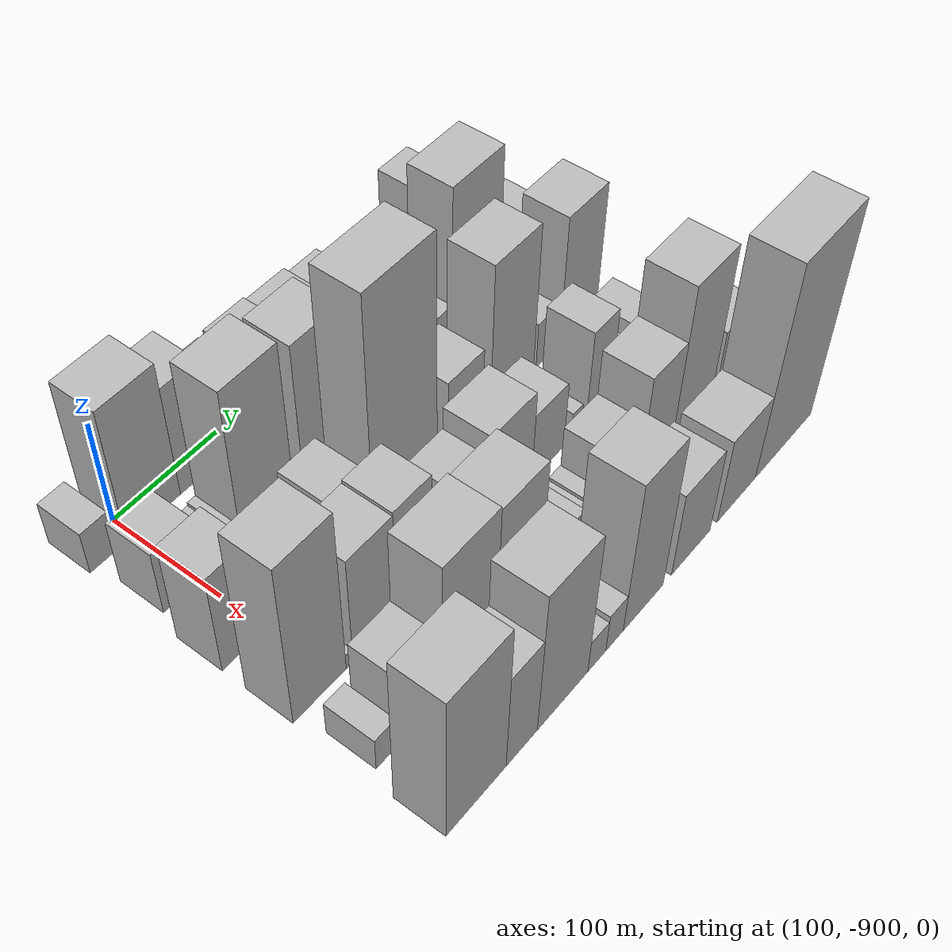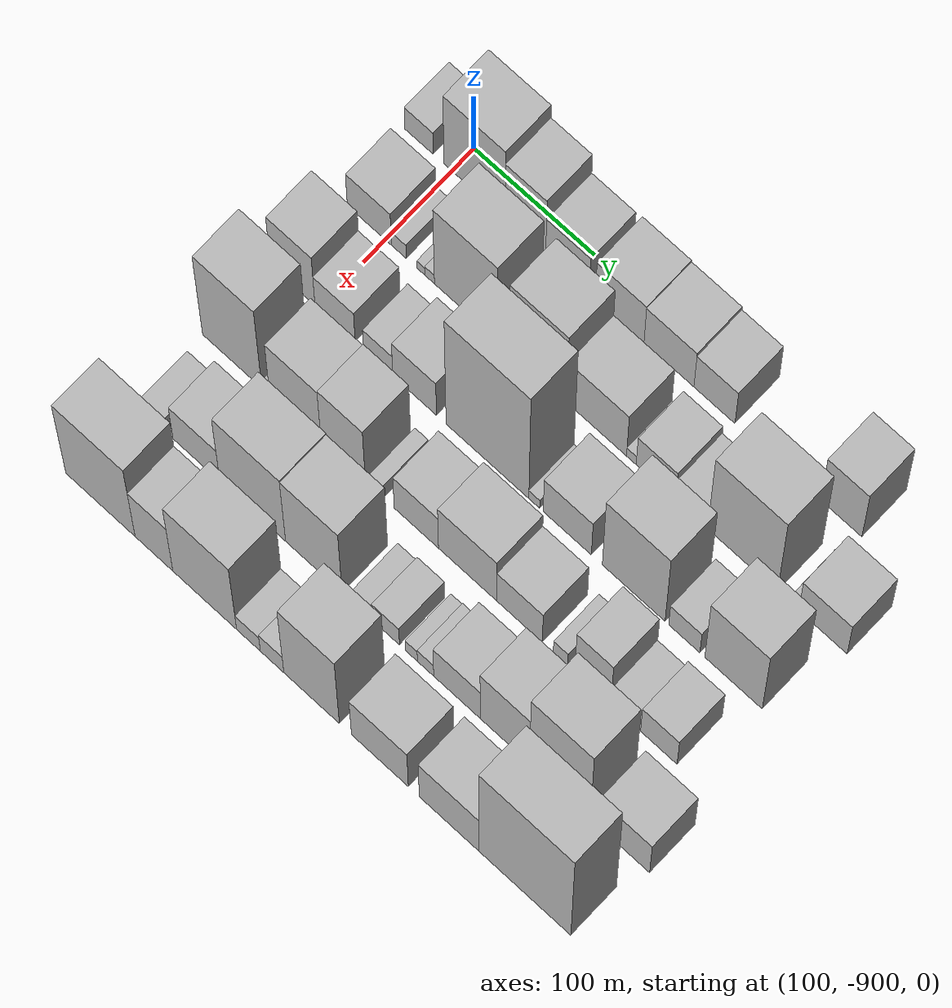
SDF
<sdf version="1.6">
 <world name="default">
  <model name="building_1">
   <static>1</static>
   <pose>100.0000 -928.0170 0 0.000000 0.000000 0.000000</pose>
   <link name="link">
    <pose>0 0 21.00 0 0 0</pose>
    <collision name="collision"><geometry><box><size>40.0000 23.9660 42.0000</size></box></geometry></collision>
    <visual name="visual">
     <cast_shadows>0</cast_shadows>
     <geometry><box><size>40.0000 23.9660 42.0000</size></box></geometry>
     <material>
      <script>
       <uri>model://HANNAS_wall/materials/scripts</uri>
       <uri>model://HANNAS_wall/materials/textures</uri>
       <name>vrc/HANNAS_wall</name>
      </script>
     </material>
    </visual>
   </link>
  </model>
  <model name="building_2">
   <static>1</static>
   <pose>100.0000 -881.4012 0 0.000000 0.000000 0.000000</pose>
   <link name="link">
    <pose>0 0 66.00 0 0 0</pose>
    <collision name="collision"><geometry><box><size>40.0000 51.2656 132.0000</size></box></geometry></collision>
    <visual name="visual">
     <cast_shadows>0</cast_shadows>
     <geometry><box><size>40.0000 51.2656 132.0000</size></box></geometry>
     <material>
      <script>
       <uri>model://HANNAS_wall/materials/scripts</uri>
       <uri>model://HANNAS_wall/materials/textures</uri>
       <name>vrc/HANNAS_wall</name>
      </script>
     </material>
    </visual>
   </link>
  </model>
  <model name="building_3">
   <static>1</static>
   <pose>100.0000 -838.8127 0 0.000000 0.000000 0.000000</pose>
   <link name="link">
    <pose>0 0 54.00 0 0 0</pose>
    <collision name="collision"><geometry><box><size>40.0000 33.9112 108.0000</size></box></geometry></collision>
    <visual name="visual">
     <cast_shadows>0</cast_shadows>
     <geometry><box><size>40.0000 33.9112 108.0000</size></box></geometry>
     <material>
      <script>
       <uri>model://HANNAS_wall/materials/scripts</uri>
       <uri>model://HANNAS_wall/materials/textures</uri>
       <name>vrc/HANNAS_wall</name>
      </script>
     </material>
    </visual>
   </link>
  </model>
  <model name="building_4">
   <static>1</static>
   <pose>100.0000 -803.6682 0 0.000000 0.000000 0.000000</pose>
   <link name="link">
    <pose>0 0 36.00 0 0 0</pose>
    <collision name="collision"><geometry><box><size>40.0000 36.3779 72.0000</size></box></geometry></collision>
    <visual name="visual">
     <cast_shadows>0</cast_shadows>
     <geometry><box><size>40.0000 36.3779 72.0000</size></box></geometry>
     <material>
      <script>
       <uri>model://HANNAS_wall/materials/scripts</uri>
       <uri>model://HANNAS_wall/materials/textures</uri>
       <name>vrc/HANNAS_wall</name>
      </script>
     </material>
    </visual>
   </link>
  </model>
  <model name="building_5">
   <static>1</static>
   <pose>100.0000 -760.2325 0 0.000000 0.000000 0.000000</pose>
   <link name="link">
    <pose>0 0 37.50 0 0 0</pose>
    <collision name="collision"><geometry><box><size>40.0000 40.4935 75.0000</size></box></geometry></collision>
    <visual name="visual">
     <cast_shadows>0</cast_shadows>
     <geometry><box><size>40.0000 40.4935 75.0000</size></box></geometry>
     <material>
      <script>
       <uri>model://HANNAS_wall/materials/scripts</uri>
       <uri>model://HANNAS_wall/materials/textures</uri>
       <name>vrc/HANNAS_wall</name>
      </script>
     </material>
    </visual>
   </link>
  </model>
  <model name="building_6">
   <static>1</static>
   <pose>100.0000 -719.3394 0 0.000000 0.000000 0.000000</pose>
   <link name="link">
    <pose>0 0 36.00 0 0 0</pose>
    <collision name="collision"><geometry><box><size>40.0000 41.2927 72.0000</size></box></geometry></collision>
    <visual name="visual">
     <cast_shadows>0</cast_shadows>
     <geometry><box><size>40.0000 41.2927 72.0000</size></box></geometry>
     <material>
      <script>
       <uri>model://HANNAS_wall/materials/scripts</uri>
       <uri>model://HANNAS_wall/materials/textures</uri>
       <name>vrc/HANNAS_wall</name>
      </script>
     </material>
    </visual>
   </link>
  </model>
  <model name="building_7">
   <static>1</static>
   <pose>100.0000 -681.7524 0 0.000000 0.000000 0.000000</pose>
   <link name="link">
    <pose>0 0 33.00 0 0 0</pose>
    <collision name="collision"><geometry><box><size>40.0000 33.8814 66.0000</size></box></geometry></collision>
    <visual name="visual">
     <cast_shadows>0</cast_shadows>
     <geometry><box><size>40.0000 33.8814 66.0000</size></box></geometry>
     <material>
      <script>
       <uri>model://HANNAS_wall/materials/scripts</uri>
       <uri>model://HANNAS_wall/materials/textures</uri>
       <name>vrc/HANNAS_wall</name>
      </script>
     </material>
    </visual>
   </link>
  </model>
  <model name="building_8">
   <static>1</static>
   <pose>100.0000 -577.4035 0 0.000000 0.000000 0.000000</pose>
   <link name="link">
    <pose>0 0 46.50 0 0 0</pose>
    <collision name="collision"><geometry><box><size>40.0000 33.6054 93.0000</size></box></geometry></collision>
    <visual name="visual">
     <cast_shadows>0</cast_shadows>
     <geometry><box><size>40.0000 33.6054 93.0000</size></box></geometry>
     <material>
      <script>
       <uri>model://HANNAS_wall/materials/scripts</uri>
       <uri>model://HANNAS_wall/materials/textures</uri>
       <name>vrc/HANNAS_wall</name>
      </script>
     </material>
    </visual>
   </link>
  </model>
  <model name="building_52">
   <static>1</static>
   <pose>160.0000 -913.4482 0 0.000000 0.000000 0.000000</pose>
   <link name="link">
    <pose>0 0 31.50 0 0 0</pose>
    <collision name="collision"><geometry><box><size>40.0000 37.1036 63.0000</size></box></geometry></collision>
    <visual name="visual">
     <cast_shadows>0</cast_shadows>
     <geometry><box><size>40.0000 37.1036 63.0000</size></box></geometry>
     <material>
      <script>
       <uri>model://HANNAS_wall/materials/scripts</uri>
       <uri>model://HANNAS_wall/materials/textures</uri>
       <name>vrc/HANNAS_wall</name>
      </script>
     </material>
    </visual>
   </link>
  </model>
  <model name="building_53">
   <static>1</static>
   <pose>160.0000 -888.6664 0 0.000000 0.000000 0.000000</pose>
   <link name="link">
    <pose>0 0 13.50 0 0 0</pose>
    <collision name="collision"><geometry><box><size>40.0000 12.4600 27.0000</size></box></geometry></collision>
    <visual name="visual">
     <cast_shadows>0</cast_shadows>
     <geometry><box><size>40.0000 12.4600 27.0000</size></box></geometry>
     <material>
      <script>
       <uri>model://HANNAS_wall/materials/scripts</uri>
       <uri>model://HANNAS_wall/materials/textures</uri>
       <name>vrc/HANNAS_wall</name>
      </script>
     </material>
    </visual>
   </link>
  </model>
  <model name="building_54">
   <static>1</static>
   <pose>160.0000 -870.0841 0 0.000000 0.000000 0.000000</pose>
   <link name="link">
    <pose>0 0 7.50 0 0 0</pose>
    <collision name="collision"><geometry><box><size>40.0000 6.7046 15.0000</size></box></geometry></collision>
    <visual name="visual">
     <cast_shadows>0</cast_shadows>
     <geometry><box><size>40.0000 6.7046 15.0000</size></box></geometry>
     <material>
      <script>
       <uri>model://HANNAS_wall/materials/scripts</uri>
       <uri>model://HANNAS_wall/materials/textures</uri>
       <name>vrc/HANNAS_wall</name>
      </script>
     </material>
    </visual>
   </link>
  </model>
  <model name="building_55">
   <static>1</static>
   <pose>160.0000 -862.7693 0 0.000000 0.000000 0.000000</pose>
   <link name="link">
    <pose>0 0 9.00 0 0 0</pose>
    <collision name="collision"><geometry><box><size>40.0000 7.9250 18.0000</size></box></geometry></collision>
    <visual name="visual">
     <cast_shadows>0</cast_shadows>
     <geometry><box><size>40.0000 7.9250 18.0000</size></box></geometry>
     <material>
      <script>
       <uri>model://HANNAS_wall/materials/scripts</uri>
       <uri>model://HANNAS_wall/materials/textures</uri>
       <name>vrc/HANNAS_wall</name>
      </script>
     </material>
    </visual>
   </link>
  </model>
  <model name="building_56">
   <static>1</static>
   <pose>160.0000 -832.4891 0 0.000000 0.000000 0.000000</pose>
   <link name="link">
    <pose>0 0 75.00 0 0 0</pose>
    <collision name="collision"><geometry><box><size>40.0000 52.6353 150.0000</size></box></geometry></collision>
    <visual name="visual">
     <cast_shadows>0</cast_shadows>
     <geometry><box><size>40.0000 52.6353 150.0000</size></box></geometry>
     <material>
      <script>
       <uri>model://HANNAS_wall/materials/scripts</uri>
       <uri>model://HANNAS_wall/materials/textures</uri>
       <name>vrc/HANNAS_wall</name>
      </script>
     </material>
    </visual>
   </link>
  </model>
  <model name="building_57">
   <static>1</static>
   <pose>160.0000 -772.4270 0 0.000000 0.000000 0.000000</pose>
   <link name="link">
    <pose>0 0 69.00 0 0 0</pose>
    <collision name="collision"><geometry><box><size>40.0000 47.4890 138.0000</size></box></geometry></collision>
    <visual name="visual">
     <cast_shadows>0</cast_shadows>
     <geometry><box><size>40.0000 47.4890 138.0000</size></box></geometry>
     <material>
      <script>
       <uri>model://HANNAS_wall/materials/scripts</uri>
       <uri>model://HANNAS_wall/materials/textures</uri>
       <name>vrc/HANNAS_wall</name>
      </script>
     </material>
    </visual>
   </link>
  </model>
  <model name="building_58">
   <static>1</static>
   <pose>160.0000 -723.8628 0 0.000000 0.000000 0.000000</pose>
   <link name="link">
    <pose>0 0 43.50 0 0 0</pose>
    <collision name="collision"><geometry><box><size>40.0000 49.6394 87.0000</size></box></geometry></collision>
    <visual name="visual">
     <cast_shadows>0</cast_shadows>
     <geometry><box><size>40.0000 49.6394 87.0000</size></box></geometry>
     <material>
      <script>
       <uri>model://HANNAS_wall/materials/scripts</uri>
       <uri>model://HANNAS_wall/materials/textures</uri>
       <name>vrc/HANNAS_wall</name>
      </script>
     </material>
    </visual>
   </link>
  </model>
  <model name="building_59">
   <static>1</static>
   <pose>160.0000 -695.0511 0 0.000000 0.000000 0.000000</pose>
   <link name="link">
    <pose>0 0 9.00 0 0 0</pose>
    <collision name="collision"><geometry><box><size>40.0000 7.9841 18.0000</size></box></geometry></collision>
    <visual name="visual">
     <cast_shadows>0</cast_shadows>
     <geometry><box><size>40.0000 7.9841 18.0000</size></box></geometry>
     <material>
      <script>
       <uri>model://HANNAS_wall/materials/scripts</uri>
       <uri>model://HANNAS_wall/materials/textures</uri>
       <name>vrc/HANNAS_wall</name>
      </script>
     </material>
    </visual>
   </link>
  </model>
  <model name="building_60">
   <static>1</static>
   <pose>160.0000 -674.8780 0 0.000000 0.000000 0.000000</pose>
   <link name="link">
    <pose>0 0 30.00 0 0 0</pose>
    <collision name="collision"><geometry><box><size>40.0000 32.3621 60.0000</size></box></geometry></collision>
    <visual name="visual">
     <cast_shadows>0</cast_shadows>
     <geometry><box><size>40.0000 32.3621 60.0000</size></box></geometry>
     <material>
      <script>
       <uri>model://HANNAS_wall/materials/scripts</uri>
       <uri>model://HANNAS_wall/materials/textures</uri>
       <name>vrc/HANNAS_wall</name>
      </script>
     </material>
    </visual>
   </link>
  </model>
  <model name="building_61">
   <static>1</static>
   <pose>160.0000 -645.4634 0 0.000000 0.000000 0.000000</pose>
   <link name="link">
    <pose>0 0 22.50 0 0 0</pose>
    <collision name="collision"><geometry><box><size>40.0000 26.4671 45.0000</size></box></geometry></collision>
    <visual name="visual">
     <cast_shadows>0</cast_shadows>
     <geometry><box><size>40.0000 26.4671 45.0000</size></box></geometry>
     <material>
      <script>
       <uri>model://HANNAS_wall/materials/scripts</uri>
       <uri>model://HANNAS_wall/materials/textures</uri>
       <name>vrc/HANNAS_wall</name>
      </script>
     </material>
    </visual>
   </link>
  </model>
  <model name="building_62">
   <static>1</static>
   <pose>160.0000 -603.5875 0 0.000000 0.000000 0.000000</pose>
   <link name="link">
    <pose>0 0 78.00 0 0 0</pose>
    <collision name="collision"><geometry><box><size>40.0000 57.2847 156.0000</size></box></geometry></collision>
    <visual name="visual">
     <cast_shadows>0</cast_shadows>
     <geometry><box><size>40.0000 57.2847 156.0000</size></box></geometry>
     <material>
      <script>
       <uri>model://HANNAS_wall/materials/scripts</uri>
       <uri>model://HANNAS_wall/materials/textures</uri>
       <name>vrc/HANNAS_wall</name>
      </script>
     </material>
    </visual>
   </link>
  </model>
  <model name="building_63">
   <static>1</static>
   <pose>160.0000 -561.2653 0 0.000000 0.000000 0.000000</pose>
   <link name="link">
    <pose>0 0 7.50 0 0 0</pose>
    <collision name="collision"><geometry><box><size>40.0000 7.3598 15.0000</size></box></geometry></collision>
    <visual name="visual">
     <cast_shadows>0</cast_shadows>
     <geometry><box><size>40.0000 7.3598 15.0000</size></box></geometry>
     <material>
      <script>
       <uri>model://HANNAS_wall/materials/scripts</uri>
       <uri>model://HANNAS_wall/materials/textures</uri>
       <name>vrc/HANNAS_wall</name>
      </script>
     </material>
    </visual>
   </link>
  </model>
  <model name="building_64">
   <static>1</static>
   <pose>160.0000 -537.8268 0 0.000000 0.000000 0.000000</pose>
   <link name="link">
    <pose>0 0 33.00 0 0 0</pose>
    <collision name="collision"><geometry><box><size>40.0000 39.5171 66.0000</size></box></geometry></collision>
    <visual name="visual">
     <cast_shadows>0</cast_shadows>
     <geometry><box><size>40.0000 39.5171 66.0000</size></box></geometry>
     <material>
      <script>
       <uri>model://HANNAS_wall/materials/scripts</uri>
       <uri>model://HANNAS_wall/materials/textures</uri>
       <name>vrc/HANNAS_wall</name>
      </script>
     </material>
    </visual>
   </link>
  </model>
  <model name="building_105">
   <static>1</static>
   <pose>220.0000 -921.2186 0 0.000000 0.000000 0.000000</pose>
   <link name="link">
    <pose>0 0 49.50 0 0 0</pose>
    <collision name="collision"><geometry><box><size>40.0000 37.5629 99.0000</size></box></geometry></collision>
    <visual name="visual">
     <cast_shadows>0</cast_shadows>
     <geometry><box><size>40.0000 37.5629 99.0000</size></box></geometry>
     <material>
      <script>
       <uri>model://HANNAS_wall/materials/scripts</uri>
       <uri>model://HANNAS_wall/materials/textures</uri>
       <name>vrc/HANNAS_wall</name>
      </script>
     </material>
    </visual>
   </link>
  </model>
  <model name="building_106">
   <static>1</static>
   <pose>220.0000 -885.5816 0 0.000000 0.000000 0.000000</pose>
   <link name="link">
    <pose>0 0 30.00 0 0 0</pose>
    <collision name="collision"><geometry><box><size>40.0000 33.7111 60.0000</size></box></geometry></collision>
    <visual name="visual">
     <cast_shadows>0</cast_shadows>
     <geometry><box><size>40.0000 33.7111 60.0000</size></box></geometry>
     <material>
      <script>
       <uri>model://HANNAS_wall/materials/scripts</uri>
       <uri>model://HANNAS_wall/materials/textures</uri>
       <name>vrc/HANNAS_wall</name>
      </script>
     </material>
    </visual>
   </link>
  </model>
  <model name="building_107">
   <static>1</static>
   <pose>220.0000 -849.4910 0 0.000000 0.000000 0.000000</pose>
   <link name="link">
    <pose>0 0 21.00 0 0 0</pose>
    <collision name="collision"><geometry><box><size>40.0000 24.4701 42.0000</size></box></geometry></collision>
    <visual name="visual">
     <cast_shadows>0</cast_shadows>
     <geometry><box><size>40.0000 24.4701 42.0000</size></box></geometry>
     <material>
      <script>
       <uri>model://HANNAS_wall/materials/scripts</uri>
       <uri>model://HANNAS_wall/materials/textures</uri>
       <name>vrc/HANNAS_wall</name>
      </script>
     </material>
    </visual>
   </link>
  </model>
  <model name="building_108">
   <static>1</static>
   <pose>220.0000 -819.0497 0 0.000000 0.000000 0.000000</pose>
   <link name="link">
    <pose>0 0 34.50 0 0 0</pose>
    <collision name="collision"><geometry><box><size>40.0000 36.4125 69.0000</size></box></geometry></collision>
    <visual name="visual">
     <cast_shadows>0</cast_shadows>
     <geometry><box><size>40.0000 36.4125 69.0000</size></box></geometry>
     <material>
      <script>
       <uri>model://HANNAS_wall/materials/scripts</uri>
       <uri>model://HANNAS_wall/materials/textures</uri>
       <name>vrc/HANNAS_wall</name>
      </script>
     </material>
    </visual>
   </link>
  </model>
  <model name="building_109">
   <static>1</static>
   <pose>220.0000 -758.5054 0 0.000000 0.000000 0.000000</pose>
   <link name="link">
    <pose>0 0 109.50 0 0 0</pose>
    <collision name="collision"><geometry><box><size>40.0000 68.6762 219.0000</size></box></geometry></collision>
    <visual name="visual">
     <cast_shadows>0</cast_shadows>
     <geometry><box><size>40.0000 68.6762 219.0000</size></box></geometry>
     <material>
      <script>
       <uri>model://HANNAS_wall/materials/scripts</uri>
       <uri>model://HANNAS_wall/materials/textures</uri>
       <name>vrc/HANNAS_wall</name>
      </script>
     </material>
    </visual>
   </link>
  </model>
  <model name="building_110">
   <static>1</static>
   <pose>220.0000 -719.6942 0 0.000000 0.000000 0.000000</pose>
   <link name="link">
    <pose>0 0 9.00 0 0 0</pose>
    <collision name="collision"><geometry><box><size>40.0000 8.9461 18.0000</size></box></geometry></collision>
    <visual name="visual">
     <cast_shadows>0</cast_shadows>
     <geometry><box><size>40.0000 8.9461 18.0000</size></box></geometry>
     <material>
      <script>
       <uri>model://HANNAS_wall/materials/scripts</uri>
       <uri>model://HANNAS_wall/materials/textures</uri>
       <name>vrc/HANNAS_wall</name>
      </script>
     </material>
    </visual>
   </link>
  </model>
  <model name="building_111">
   <static>1</static>
   <pose>220.0000 -692.3353 0 0.000000 0.000000 0.000000</pose>
   <link name="link">
    <pose>0 0 36.00 0 0 0</pose>
    <collision name="collision"><geometry><box><size>40.0000 39.7717 72.0000</size></box></geometry></collision>
    <visual name="visual">
     <cast_shadows>0</cast_shadows>
     <geometry><box><size>40.0000 39.7717 72.0000</size></box></geometry>
     <material>
      <script>
       <uri>model://HANNAS_wall/materials/scripts</uri>
       <uri>model://HANNAS_wall/materials/textures</uri>
       <name>vrc/HANNAS_wall</name>
      </script>
     </material>
    </visual>
   </link>
  </model>
  <model name="building_112">
   <static>1</static>
   <pose>220.0000 -637.6710 0 0.000000 0.000000 0.000000</pose>
   <link name="link">
    <pose>0 0 72.00 0 0 0</pose>
    <collision name="collision"><geometry><box><size>40.0000 51.5570 144.0000</size></box></geometry></collision>
    <visual name="visual">
     <cast_shadows>0</cast_shadows>
     <geometry><box><size>40.0000 51.5570 144.0000</size></box></geometry>
     <material>
      <script>
       <uri>model://HANNAS_wall/materials/scripts</uri>
       <uri>model://HANNAS_wall/materials/textures</uri>
       <name>vrc/HANNAS_wall</name>
      </script>
     </material>
    </visual>
   </link>
  </model>
  <model name="building_113">
   <static>1</static>
   <pose>220.0000 -596.1431 0 0.000000 0.000000 0.000000</pose>
   <link name="link">
    <pose>0 0 22.50 0 0 0</pose>
    <collision name="collision"><geometry><box><size>40.0000 25.4987 45.0000</size></box></geometry></collision>
    <visual name="visual">
     <cast_shadows>0</cast_shadows>
     <geometry><box><size>40.0000 25.4987 45.0000</size></box></geometry>
     <material>
      <script>
       <uri>model://HANNAS_wall/materials/scripts</uri>
       <uri>model://HANNAS_wall/materials/textures</uri>
       <name>vrc/HANNAS_wall</name>
      </script>
     </material>
    </visual>
   </link>
  </model>
  <model name="building_114">
   <static>1</static>
   <pose>220.0000 -555.9152 0 0.000000 0.000000 0.000000</pose>
   <link name="link">
    <pose>0 0 63.00 0 0 0</pose>
    <collision name="collision"><geometry><box><size>40.0000 46.9571 126.0000</size></box></geometry></collision>
    <visual name="visual">
     <cast_shadows>0</cast_shadows>
     <geometry><box><size>40.0000 46.9571 126.0000</size></box></geometry>
     <material>
      <script>
       <uri>model://HANNAS_wall/materials/scripts</uri>
       <uri>model://HANNAS_wall/materials/textures</uri>
       <name>vrc/HANNAS_wall</name>
      </script>
     </material>
    </visual>
   </link>
  </model>
  <model name="building_159">
   <static>1</static>
   <pose>280.0000 -915.0862 0 0.000000 0.000000 0.000000</pose>
   <link name="link">
    <pose>0 0 81.00 0 0 0</pose>
    <collision name="collision"><geometry><box><size>40.0000 49.8275 162.0000</size></box></geometry></collision>
    <visual name="visual">
     <cast_shadows>0</cast_shadows>
     <geometry><box><size>40.0000 49.8275 162.0000</size></box></geometry>
     <material>
      <script>
       <uri>model://HANNAS_wall/materials/scripts</uri>
       <uri>model://HANNAS_wall/materials/textures</uri>
       <name>vrc/HANNAS_wall</name>
      </script>
     </material>
    </visual>
   </link>
  </model>
  <model name="building_160">
   <static>1</static>
   <pose>280.0000 -886.8740 0 0.000000 0.000000 0.000000</pose>
   <link name="link">
    <pose>0 0 7.50 0 0 0</pose>
    <collision name="collision"><geometry><box><size>40.0000 6.5970 15.0000</size></box></geometry></collision>
    <visual name="visual">
     <cast_shadows>0</cast_shadows>
     <geometry><box><size>40.0000 6.5970 15.0000</size></box></geometry>
     <material>
      <script>
       <uri>model://HANNAS_wall/materials/scripts</uri>
       <uri>model://HANNAS_wall/materials/textures</uri>
       <name>vrc/HANNAS_wall</name>
      </script>
     </material>
    </visual>
   </link>
  </model>
  <model name="building_161">
   <static>1</static>
   <pose>280.0000 -862.0949 0 0.000000 0.000000 0.000000</pose>
   <link name="link">
    <pose>0 0 54.00 0 0 0</pose>
    <collision name="collision"><geometry><box><size>40.0000 42.9611 108.0000</size></box></geometry></collision>
    <visual name="visual">
     <cast_shadows>0</cast_shadows>
     <geometry><box><size>40.0000 42.9611 108.0000</size></box></geometry>
     <material>
      <script>
       <uri>model://HANNAS_wall/materials/scripts</uri>
       <uri>model://HANNAS_wall/materials/textures</uri>
       <name>vrc/HANNAS_wall</name>
      </script>
     </material>
    </visual>
   </link>
  </model>
  <model name="building_162">
   <static>1</static>
   <pose>280.0000 -822.1187 0 0.000000 0.000000 0.000000</pose>
   <link name="link">
    <pose>0 0 55.50 0 0 0</pose>
    <collision name="collision"><geometry><box><size>40.0000 36.9913 111.0000</size></box></geometry></collision>
    <visual name="visual">
     <cast_shadows>0</cast_shadows>
     <geometry><box><size>40.0000 36.9913 111.0000</size></box></geometry>
     <material>
      <script>
       <uri>model://HANNAS_wall/materials/scripts</uri>
       <uri>model://HANNAS_wall/materials/textures</uri>
       <name>vrc/HANNAS_wall</name>
      </script>
     </material>
    </visual>
   </link>
  </model>
  <model name="building_163">
   <static>1</static>
   <pose>280.0000 -794.1383 0 0.000000 0.000000 0.000000</pose>
   <link name="link">
    <pose>0 0 13.50 0 0 0</pose>
    <collision name="collision"><geometry><box><size>40.0000 10.9694 27.0000</size></box></geometry></collision>
    <visual name="visual">
     <cast_shadows>0</cast_shadows>
     <geometry><box><size>40.0000 10.9694 27.0000</size></box></geometry>
     <material>
      <script>
       <uri>model://HANNAS_wall/materials/scripts</uri>
       <uri>model://HANNAS_wall/materials/textures</uri>
       <name>vrc/HANNAS_wall</name>
      </script>
     </material>
    </visual>
   </link>
  </model>
  <model name="building_164">
   <static>1</static>
   <pose>280.0000 -761.2804 0 0.000000 0.000000 0.000000</pose>
   <link name="link">
    <pose>0 0 34.50 0 0 0</pose>
    <collision name="collision"><geometry><box><size>40.0000 36.7464 69.0000</size></box></geometry></collision>
    <visual name="visual">
     <cast_shadows>0</cast_shadows>
     <geometry><box><size>40.0000 36.7464 69.0000</size></box></geometry>
     <material>
      <script>
       <uri>model://HANNAS_wall/materials/scripts</uri>
       <uri>model://HANNAS_wall/materials/textures</uri>
       <name>vrc/HANNAS_wall</name>
      </script>
     </material>
    </visual>
   </link>
  </model>
  <model name="building_165">
   <static>1</static>
   <pose>280.0000 -718.7684 0 0.000000 0.000000 0.000000</pose>
   <link name="link">
    <pose>0 0 45.00 0 0 0</pose>
    <collision name="collision"><geometry><box><size>40.0000 48.2777 90.0000</size></box></geometry></collision>
    <visual name="visual">
     <cast_shadows>0</cast_shadows>
     <geometry><box><size>40.0000 48.2777 90.0000</size></box></geometry>
     <material>
      <script>
       <uri>model://HANNAS_wall/materials/scripts</uri>
       <uri>model://HANNAS_wall/materials/textures</uri>
       <name>vrc/HANNAS_wall</name>
      </script>
     </material>
    </visual>
   </link>
  </model>
  <model name="building_166">
   <static>1</static>
   <pose>280.0000 -675.8648 0 0.000000 0.000000 0.000000</pose>
   <link name="link">
    <pose>0 0 33.00 0 0 0</pose>
    <collision name="collision"><geometry><box><size>40.0000 37.5296 66.0000</size></box></geometry></collision>
    <visual name="visual">
     <cast_shadows>0</cast_shadows>
     <geometry><box><size>40.0000 37.5296 66.0000</size></box></geometry>
     <material>
      <script>
       <uri>model://HANNAS_wall/materials/scripts</uri>
       <uri>model://HANNAS_wall/materials/textures</uri>
       <name>vrc/HANNAS_wall</name>
      </script>
     </material>
    </visual>
   </link>
  </model>
  <model name="building_167">
   <static>1</static>
   <pose>280.0000 -642.1683 0 0.000000 0.000000 0.000000</pose>
   <link name="link">
    <pose>0 0 13.50 0 0 0</pose>
    <collision name="collision"><geometry><box><size>40.0000 11.8634 27.0000</size></box></geometry></collision>
    <visual name="visual">
     <cast_shadows>0</cast_shadows>
     <geometry><box><size>40.0000 11.8634 27.0000</size></box></geometry>
     <material>
      <script>
       <uri>model://HANNAS_wall/materials/scripts</uri>
       <uri>model://HANNAS_wall/materials/textures</uri>
       <name>vrc/HANNAS_wall</name>
      </script>
     </material>
    </visual>
   </link>
  </model>
  <model name="building_168">
   <static>1</static>
   <pose>280.0000 -615.5147 0 0.000000 0.000000 0.000000</pose>
   <link name="link">
    <pose>0 0 46.50 0 0 0</pose>
    <collision name="collision"><geometry><box><size>40.0000 29.4438 93.0000</size></box></geometry></collision>
    <visual name="visual">
     <cast_shadows>0</cast_shadows>
     <geometry><box><size>40.0000 29.4438 93.0000</size></box></geometry>
     <material>
      <script>
       <uri>model://HANNAS_wall/materials/scripts</uri>
       <uri>model://HANNAS_wall/materials/textures</uri>
       <name>vrc/HANNAS_wall</name>
      </script>
     </material>
    </visual>
   </link>
  </model>
  <model name="building_169">
   <static>1</static>
   <pose>280.0000 -588.6809 0 0.000000 0.000000 0.000000</pose>
   <link name="link">
    <pose>0 0 21.00 0 0 0</pose>
    <collision name="collision"><geometry><box><size>40.0000 24.2236 42.0000</size></box></geometry></collision>
    <visual name="visual">
     <cast_shadows>0</cast_shadows>
     <geometry><box><size>40.0000 24.2236 42.0000</size></box></geometry>
     <material>
      <script>
       <uri>model://HANNAS_wall/materials/scripts</uri>
       <uri>model://HANNAS_wall/materials/textures</uri>
       <name>vrc/HANNAS_wall</name>
      </script>
     </material>
    </visual>
   </link>
  </model>
  <model name="building_170">
   <static>1</static>
   <pose>280.0000 -561.6719 0 0.000000 0.000000 0.000000</pose>
   <link name="link">
    <pose>0 0 28.50 0 0 0</pose>
    <collision name="collision"><geometry><box><size>40.0000 29.7944 57.0000</size></box></geometry></collision>
    <visual name="visual">
     <cast_shadows>0</cast_shadows>
     <geometry><box><size>40.0000 29.7944 57.0000</size></box></geometry>
     <material>
      <script>
       <uri>model://HANNAS_wall/materials/scripts</uri>
       <uri>model://HANNAS_wall/materials/textures</uri>
       <name>vrc/HANNAS_wall</name>
      </script>
     </material>
    </visual>
   </link>
  </model>
  <model name="building_214">
   <static>1</static>
   <pose>340.0000 -922.2626 0 0.000000 0.000000 0.000000</pose>
   <link name="link">
    <pose>0 0 16.50 0 0 0</pose>
    <collision name="collision"><geometry><box><size>40.0000 19.4748 33.0000</size></box></geometry></collision>
    <visual name="visual">
     <cast_shadows>0</cast_shadows>
     <geometry><box><size>40.0000 19.4748 33.0000</size></box></geometry>
     <material>
      <script>
       <uri>model://HANNAS_wall/materials/scripts</uri>
       <uri>model://HANNAS_wall/materials/textures</uri>
       <name>vrc/HANNAS_wall</name>
      </script>
     </material>
    </visual>
   </link>
  </model>
  <model name="building_215">
   <static>1</static>
   <pose>340.0000 -887.8801 0 0.000000 0.000000 0.000000</pose>
   <link name="link">
    <pose>0 0 34.50 0 0 0</pose>
    <collision name="collision"><geometry><box><size>40.0000 39.2902 69.0000</size></box></geometry></collision>
    <visual name="visual">
     <cast_shadows>0</cast_shadows>
     <geometry><box><size>40.0000 39.2902 69.0000</size></box></geometry>
     <material>
      <script>
       <uri>model://HANNAS_wall/materials/scripts</uri>
       <uri>model://HANNAS_wall/materials/textures</uri>
       <name>vrc/HANNAS_wall</name>
      </script>
     </material>
    </visual>
   </link>
  </model>
  <model name="building_216">
   <static>1</static>
   <pose>340.0000 -840.7975 0 0.000000 0.000000 0.000000</pose>
   <link name="link">
    <pose>0 0 69.00 0 0 0</pose>
    <collision name="collision"><geometry><box><size>40.0000 54.8749 138.0000</size></box></geometry></collision>
    <visual name="visual">
     <cast_shadows>0</cast_shadows>
     <geometry><box><size>40.0000 54.8749 138.0000</size></box></geometry>
     <material>
      <script>
       <uri>model://HANNAS_wall/materials/scripts</uri>
       <uri>model://HANNAS_wall/materials/textures</uri>
       <name>vrc/HANNAS_wall</name>
      </script>
     </material>
    </visual>
   </link>
  </model>
  <model name="building_217">
   <static>1</static>
   <pose>340.0000 -789.8390 0 0.000000 0.000000 0.000000</pose>
   <link name="link">
    <pose>0 0 67.50 0 0 0</pose>
    <collision name="collision"><geometry><box><size>40.0000 47.0422 135.0000</size></box></geometry></collision>
    <visual name="visual">
     <cast_shadows>0</cast_shadows>
     <geometry><box><size>40.0000 47.0422 135.0000</size></box></geometry>
     <material>
      <script>
       <uri>model://HANNAS_wall/materials/scripts</uri>
       <uri>model://HANNAS_wall/materials/textures</uri>
       <name>vrc/HANNAS_wall</name>
      </script>
     </material>
    </visual>
   </link>
  </model>
  <model name="building_218">
   <static>1</static>
   <pose>340.0000 -749.3209 0 0.000000 0.000000 0.000000</pose>
   <link name="link">
    <pose>0 0 15.00 0 0 0</pose>
    <collision name="collision"><geometry><box><size>40.0000 15.9939 30.0000</size></box></geometry></collision>
    <visual name="visual">
     <cast_shadows>0</cast_shadows>
     <geometry><box><size>40.0000 15.9939 30.0000</size></box></geometry>
     <material>
      <script>
       <uri>model://HANNAS_wall/materials/scripts</uri>
       <uri>model://HANNAS_wall/materials/textures</uri>
       <name>vrc/HANNAS_wall</name>
      </script>
     </material>
    </visual>
   </link>
  </model>
  <model name="building_219">
   <static>1</static>
   <pose>340.0000 -730.0743 0 0.000000 0.000000 0.000000</pose>
   <link name="link">
    <pose>0 0 19.50 0 0 0</pose>
    <collision name="collision"><geometry><box><size>40.0000 22.4994 39.0000</size></box></geometry></collision>
    <visual name="visual">
     <cast_shadows>0</cast_shadows>
     <geometry><box><size>40.0000 22.4994 39.0000</size></box></geometry>
     <material>
      <script>
       <uri>model://HANNAS_wall/materials/scripts</uri>
       <uri>model://HANNAS_wall/materials/textures</uri>
       <name>vrc/HANNAS_wall</name>
      </script>
     </material>
    </visual>
   </link>
  </model>
  <model name="building_220">
   <static>1</static>
   <pose>340.0000 -708.9150 0 0.000000 0.000000 0.000000</pose>
   <link name="link">
    <pose>0 0 12.00 0 0 0</pose>
    <collision name="collision"><geometry><box><size>40.0000 9.8192 24.0000</size></box></geometry></collision>
    <visual name="visual">
     <cast_shadows>0</cast_shadows>
     <geometry><box><size>40.0000 9.8192 24.0000</size></box></geometry>
     <material>
      <script>
       <uri>model://HANNAS_wall/materials/scripts</uri>
       <uri>model://HANNAS_wall/materials/textures</uri>
       <name>vrc/HANNAS_wall</name>
      </script>
     </material>
    </visual>
   </link>
  </model>
  <model name="building_221">
   <static>1</static>
   <pose>340.0000 -697.2842 0 0.000000 0.000000 0.000000</pose>
   <link name="link">
    <pose>0 0 13.50 0 0 0</pose>
    <collision name="collision"><geometry><box><size>40.0000 13.4423 27.0000</size></box></geometry></collision>
    <visual name="visual">
     <cast_shadows>0</cast_shadows>
     <geometry><box><size>40.0000 13.4423 27.0000</size></box></geometry>
     <material>
      <script>
       <uri>model://HANNAS_wall/materials/scripts</uri>
       <uri>model://HANNAS_wall/materials/textures</uri>
       <name>vrc/HANNAS_wall</name>
      </script>
     </material>
    </visual>
   </link>
  </model>
  <model name="building_222">
   <static>1</static>
   <pose>340.0000 -671.4333 0 0.000000 0.000000 0.000000</pose>
   <link name="link">
    <pose>0 0 33.00 0 0 0</pose>
    <collision name="collision"><geometry><box><size>40.0000 38.2596 66.0000</size></box></geometry></collision>
    <visual name="visual">
     <cast_shadows>0</cast_shadows>
     <geometry><box><size>40.0000 38.2596 66.0000</size></box></geometry>
     <material>
      <script>
       <uri>model://HANNAS_wall/materials/scripts</uri>
       <uri>model://HANNAS_wall/materials/textures</uri>
       <name>vrc/HANNAS_wall</name>
      </script>
     </material>
    </visual>
   </link>
  </model>
  <model name="building_223">
   <static>1</static>
   <pose>340.0000 -632.0298 0 0.000000 0.000000 0.000000</pose>
   <link name="link">
    <pose>0 0 54.00 0 0 0</pose>
    <collision name="collision"><geometry><box><size>40.0000 40.5473 108.0000</size></box></geometry></collision>
    <visual name="visual">
     <cast_shadows>0</cast_shadows>
     <geometry><box><size>40.0000 40.5473 108.0000</size></box></geometry>
     <material>
      <script>
       <uri>model://HANNAS_wall/materials/scripts</uri>
       <uri>model://HANNAS_wall/materials/textures</uri>
       <name>vrc/HANNAS_wall</name>
      </script>
     </material>
    </visual>
   </link>
  </model>
  <model name="building_224">
   <static>1</static>
   <pose>340.0000 -586.8787 0 0.000000 0.000000 0.000000</pose>
   <link name="link">
    <pose>0 0 79.50 0 0 0</pose>
    <collision name="collision"><geometry><box><size>40.0000 49.7549 159.0000</size></box></geometry></collision>
    <visual name="visual">
     <cast_shadows>0</cast_shadows>
     <geometry><box><size>40.0000 49.7549 159.0000</size></box></geometry>
     <material>
      <script>
       <uri>model://HANNAS_wall/materials/scripts</uri>
       <uri>model://HANNAS_wall/materials/textures</uri>
       <name>vrc/HANNAS_wall</name>
      </script>
     </material>
    </visual>
   </link>
  </model>
  <model name="building_225">
   <static>1</static>
   <pose>340.0000 -534.9054 0 0.000000 0.000000 0.000000</pose>
   <link name="link">
    <pose>0 0 36.00 0 0 0</pose>
    <collision name="collision"><geometry><box><size>40.0000 42.1917 72.0000</size></box></geometry></collision>
    <visual name="visual">
     <cast_shadows>0</cast_shadows>
     <geometry><box><size>40.0000 42.1917 72.0000</size></box></geometry>
     <material>
      <script>
       <uri>model://HANNAS_wall/materials/scripts</uri>
       <uri>model://HANNAS_wall/materials/textures</uri>
       <name>vrc/HANNAS_wall</name>
      </script>
     </material>
    </visual>
   </link>
  </model>
  <model name="building_269">
   <static>1</static>
   <pose>400.0000 -910.9402 0 0.000000 0.000000 0.000000</pose>
   <link name="link">
    <pose>0 0 75.00 0 0 0</pose>
    <collision name="collision"><geometry><box><size>40.0000 58.1197 150.0000</size></box></geometry></collision>
    <visual name="visual">
     <cast_shadows>0</cast_shadows>
     <geometry><box><size>40.0000 58.1197 150.0000</size></box></geometry>
     <material>
      <script>
       <uri>model://HANNAS_wall/materials/scripts</uri>
       <uri>model://HANNAS_wall/materials/textures</uri>
       <name>vrc/HANNAS_wall</name>
      </script>
     </material>
    </visual>
   </link>
  </model>
  <model name="building_270">
   <static>1</static>
   <pose>400.0000 -866.0691 0 0.000000 0.000000 0.000000</pose>
   <link name="link">
    <pose>0 0 49.50 0 0 0</pose>
    <collision name="collision"><geometry><box><size>40.0000 31.6224 99.0000</size></box></geometry></collision>
    <visual name="visual">
     <cast_shadows>0</cast_shadows>
     <geometry><box><size>40.0000 31.6224 99.0000</size></box></geometry>
     <material>
      <script>
       <uri>model://HANNAS_wall/materials/scripts</uri>
       <uri>model://HANNAS_wall/materials/textures</uri>
       <name>vrc/HANNAS_wall</name>
      </script>
     </material>
    </visual>
   </link>
  </model>
  <model name="building_271">
   <static>1</static>
   <pose>400.0000 -823.6790 0 0.000000 0.000000 0.000000</pose>
   <link name="link">
    <pose>0 0 72.00 0 0 0</pose>
    <collision name="collision"><geometry><box><size>40.0000 53.1578 144.0000</size></box></geometry></collision>
    <visual name="visual">
     <cast_shadows>0</cast_shadows>
     <geometry><box><size>40.0000 53.1578 144.0000</size></box></geometry>
     <material>
      <script>
       <uri>model://HANNAS_wall/materials/scripts</uri>
       <uri>model://HANNAS_wall/materials/textures</uri>
       <name>vrc/HANNAS_wall</name>
      </script>
     </material>
    </visual>
   </link>
  </model>
  <model name="building_272">
   <static>1</static>
   <pose>400.0000 -787.2538 0 0.000000 0.000000 0.000000</pose>
   <link name="link">
    <pose>0 0 16.50 0 0 0</pose>
    <collision name="collision"><geometry><box><size>40.0000 19.6927 33.0000</size></box></geometry></collision>
    <visual name="visual">
     <cast_shadows>0</cast_shadows>
     <geometry><box><size>40.0000 19.6927 33.0000</size></box></geometry>
     <material>
      <script>
       <uri>model://HANNAS_wall/materials/scripts</uri>
       <uri>model://HANNAS_wall/materials/textures</uri>
       <name>vrc/HANNAS_wall</name>
      </script>
     </material>
    </visual>
   </link>
  </model>
  <model name="building_273">
   <static>1</static>
   <pose>400.0000 -767.6379 0 0.000000 0.000000 0.000000</pose>
   <link name="link">
    <pose>0 0 19.50 0 0 0</pose>
    <collision name="collision"><geometry><box><size>40.0000 19.5390 39.0000</size></box></geometry></collision>
    <visual name="visual">
     <cast_shadows>0</cast_shadows>
     <geometry><box><size>40.0000 19.5390 39.0000</size></box></geometry>
     <material>
      <script>
       <uri>model://HANNAS_wall/materials/scripts</uri>
       <uri>model://HANNAS_wall/materials/textures</uri>
       <name>vrc/HANNAS_wall</name>
      </script>
     </material>
    </visual>
   </link>
  </model>
  <model name="building_274">
   <static>1</static>
   <pose>400.0000 -734.9148 0 0.000000 0.000000 0.000000</pose>
   <link name="link">
    <pose>0 0 75.00 0 0 0</pose>
    <collision name="collision"><geometry><box><size>40.0000 45.9073 150.0000</size></box></geometry></collision>
    <visual name="visual">
     <cast_shadows>0</cast_shadows>
     <geometry><box><size>40.0000 45.9073 150.0000</size></box></geometry>
     <material>
      <script>
       <uri>model://HANNAS_wall/materials/scripts</uri>
       <uri>model://HANNAS_wall/materials/textures</uri>
       <name>vrc/HANNAS_wall</name>
      </script>
     </material>
    </visual>
   </link>
  </model>
  <model name="building_275">
   <static>1</static>
   <pose>400.0000 -678.5326 0 0.000000 0.000000 0.000000</pose>
   <link name="link">
    <pose>0 0 42.00 0 0 0</pose>
    <collision name="collision"><geometry><box><size>40.0000 46.8571 84.0000</size></box></geometry></collision>
    <visual name="visual">
     <cast_shadows>0</cast_shadows>
     <geometry><box><size>40.0000 46.8571 84.0000</size></box></geometry>
     <material>
      <script>
       <uri>model://HANNAS_wall/materials/scripts</uri>
       <uri>model://HANNAS_wall/materials/textures</uri>
       <name>vrc/HANNAS_wall</name>
      </script>
     </material>
    </visual>
   </link>
  </model>
  <model name="building_276">
   <static>1</static>
   <pose>400.0000 -621.6408 0 0.000000 0.000000 0.000000</pose>
   <link name="link">
    <pose>0 0 42.00 0 0 0</pose>
    <collision name="collision"><geometry><box><size>40.0000 48.9265 84.0000</size></box></geometry></collision>
    <visual name="visual">
     <cast_shadows>0</cast_shadows>
     <geometry><box><size>40.0000 48.9265 84.0000</size></box></geometry>
     <material>
      <script>
       <uri>model://HANNAS_wall/materials/scripts</uri>
       <uri>model://HANNAS_wall/materials/textures</uri>
       <name>vrc/HANNAS_wall</name>
      </script>
     </material>
    </visual>
   </link>
  </model>
  <model name="building_277">
   <static>1</static>
   <pose>400.0000 -559.7240 0 0.000000 0.000000 0.000000</pose>
   <link name="link">
    <pose>0 0 102.00 0 0 0</pose>
    <collision name="collision"><geometry><box><size>40.0000 74.9070 204.0000</size></box></geometry></collision>
    <visual name="visual">
     <cast_shadows>0</cast_shadows>
     <geometry><box><size>40.0000 74.9070 204.0000</size></box></geometry>
     <material>
      <script>
       <uri>model://HANNAS_wall/materials/scripts</uri>
       <uri>model://HANNAS_wall/materials/textures</uri>
       <name>vrc/HANNAS_wall</name>
      </script>
     </material>
    </visual>
   </link>
  </model>
 </world>
</sdf>
